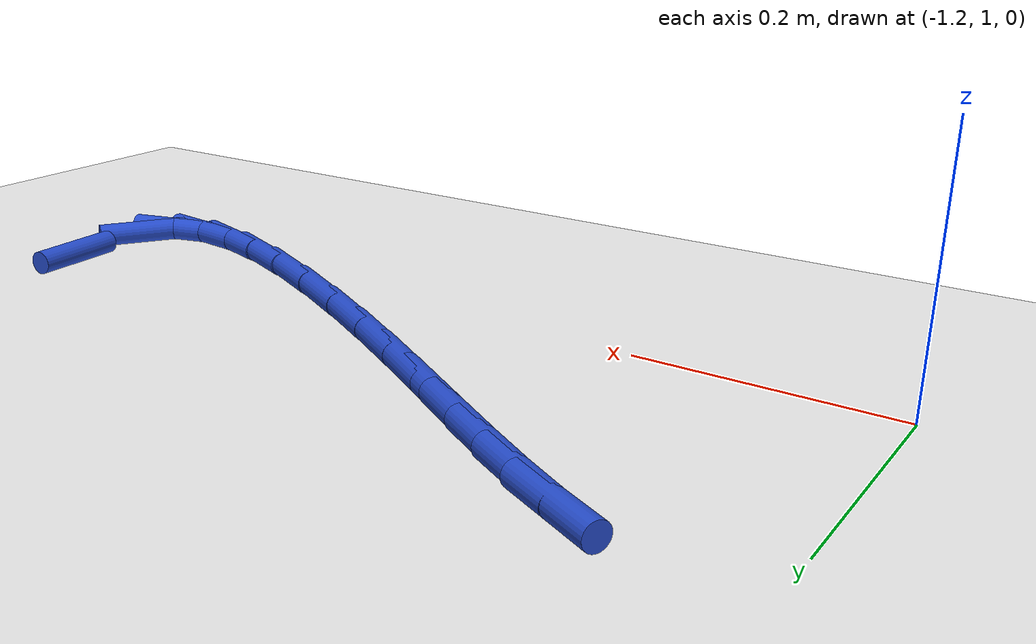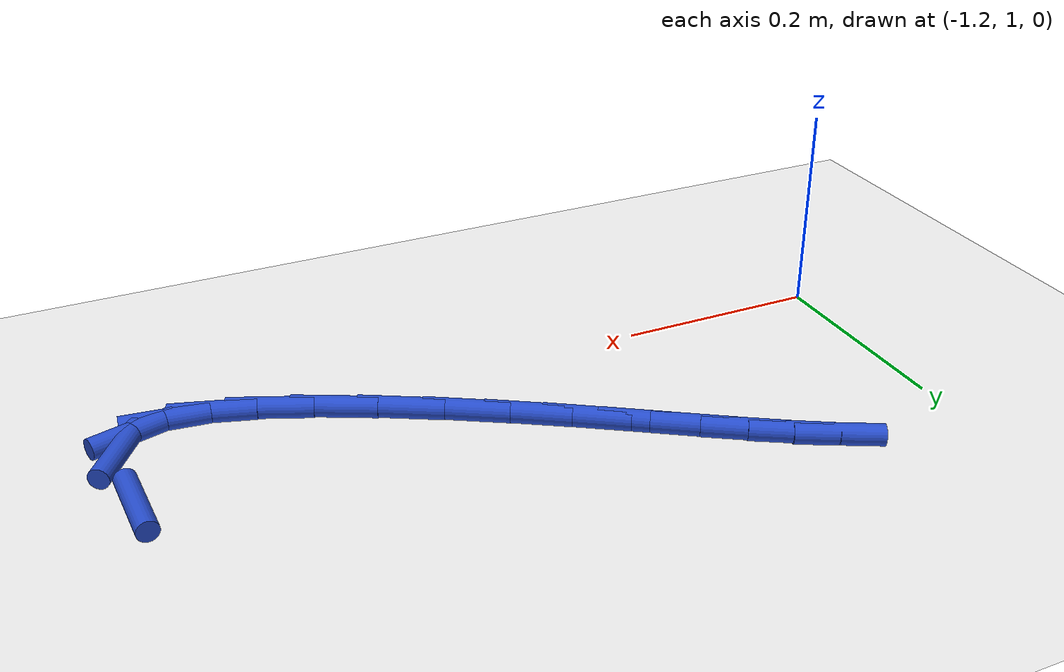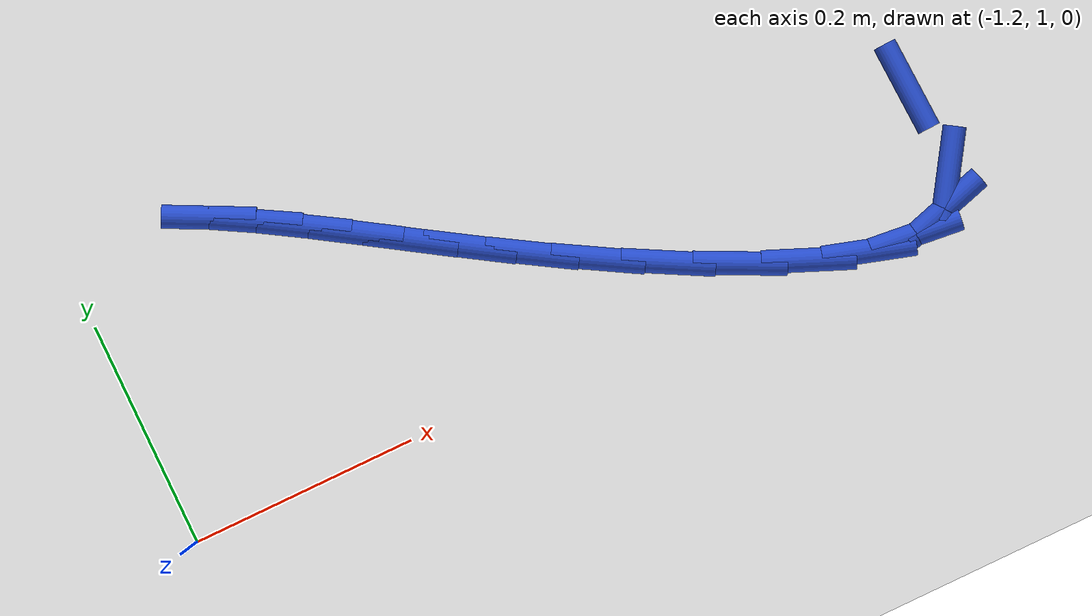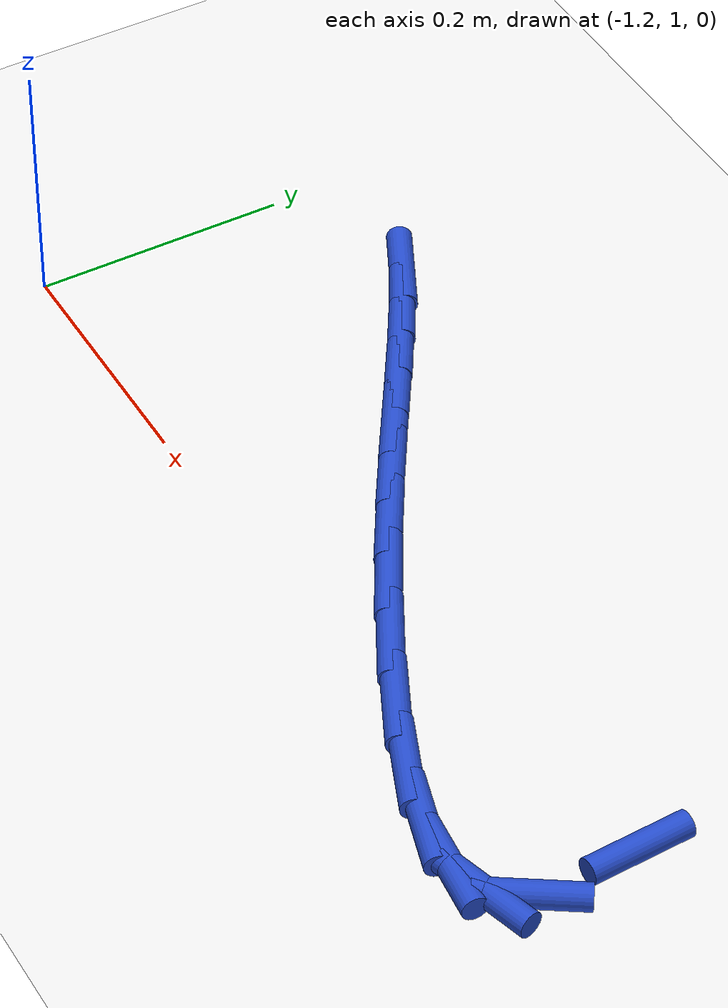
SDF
<sdf version="1.6">
 <world name="default">
  <model name="ground_plane">
   <static>1</static>
   <link name="link">
    <collision name="collision">
     <geometry><plane><normal>0 0 1</normal><size>100 100</size></plane></geometry>
     <surface><friction><ode><mu>100</mu><mu2>50</mu2></ode></friction></surface>
    </collision>
    <visual name="visual">
     <cast_shadows>0</cast_shadows>
     <geometry><plane><normal>0 0 1</normal><size>100 100</size></plane></geometry>
     <material>
      <script><uri>file://media/materials/scripts/gazebo.material</uri><name>Gazebo/WhiteGlow</name></script>
     </material>
    </visual>
   </link>
  </model>
  <model name="line">
   <link name="link_28">
    <pose>-0.495390885817745 1.090029854774531 0.01 0 1.57 -1.525897242596418</pose>
    <collision name="collision">
     <geometry><cylinder><radius>0.01</radius><length>0.08</length></cylinder></geometry>
    </collision>
    <visual name="visual">
     <material>
      <script><name>Gazebo/Blue</name><uri>file://media/materials/scripts/gazebo.material</uri></script>
     </material>
     <geometry><cylinder><radius>0.01</radius><length>0.08</length></cylinder></geometry>
    </visual>
   </link>
   <link name="link_30">
    <pose>-0.4951343439324828 1.0088294250495677 0.01 0 1.57 0.9966554843505282</pose>
    <collision name="collision">
     <geometry><cylinder><radius>0.01</radius><length>0.08</length></cylinder></geometry>
    </collision>
    <visual name="visual">
     <material>
      <script><name>Gazebo/Blue</name><uri>file://media/materials/scripts/gazebo.material</uri></script>
     </material>
     <geometry><cylinder><radius>0.01</radius><length>0.08</length></cylinder></geometry>
    </visual>
   </link>
   <link name="link_31">
    <pose>-0.5115635701526513 0.9834296713163049 0.01 0 1.57 0.2851591304180115</pose>
    <collision name="collision">
     <geometry><cylinder><radius>0.01</radius><length>0.08</length></cylinder></geometry>
    </collision>
    <visual name="visual">
     <material>
      <script><name>Gazebo/Blue</name><uri>file://media/materials/scripts/gazebo.material</uri></script>
     </material>
     <geometry><cylinder><radius>0.01</radius><length>0.08</length></cylinder></geometry>
    </visual>
   </link>
   <link name="link_32">
    <pose>-0.5421954612390985 0.9744499814456288 0.01 0 1.57 -0.10648267011751417</pose>
    <collision name="collision">
     <geometry><cylinder><radius>0.01</radius><length>0.08</length></cylinder></geometry>
    </collision>
    <visual name="visual">
     <material>
      <script><name>Gazebo/Blue</name><uri>file://media/materials/scripts/gazebo.material</uri></script>
     </material>
     <geometry><cylinder><radius>0.01</radius><length>0.08</length></cylinder></geometry>
    </visual>
   </link>
   <link name="link_33">
    <pose>-0.5837086463189772 0.9788871994815329 0.01 0 1.57 -0.2938674265596027</pose>
    <collision name="collision">
     <geometry><cylinder><radius>0.01</radius><length>0.08</length></cylinder></geometry>
    </collision>
    <visual name="visual">
     <material>
      <script><name>Gazebo/Blue</name><uri>file://media/materials/scripts/gazebo.material</uri></script>
     </material>
     <geometry><cylinder><radius>0.01</radius><length>0.08</length></cylinder></geometry>
    </visual>
   </link>
   <link name="link_34">
    <pose>-0.6327817545194403 0.9937381694680107 0.01 0 1.57 -0.3955640258323818</pose>
    <collision name="collision">
     <geometry><cylinder><radius>0.01</radius><length>0.08</length></cylinder></geometry>
    </collision>
    <visual name="visual">
     <material>
      <script><name>Gazebo/Blue</name><uri>file://media/materials/scripts/gazebo.material</uri></script>
     </material>
     <geometry><cylinder><radius>0.01</radius><length>0.08</length></cylinder></geometry>
    </visual>
   </link>
   <link name="link_35">
    <pose>-0.6860934149676401 1.0159997354490558 0.01 0 1.57 -0.45705515209429315</pose>
    <collision name="collision">
     <geometry><cylinder><radius>0.01</radius><length>0.08</length></cylinder></geometry>
    </collision>
    <visual name="visual">
     <material>
      <script><name>Gazebo/Blue</name><uri>file://media/materials/scripts/gazebo.material</uri></script>
     </material>
     <geometry><cylinder><radius>0.01</radius><length>0.08</length></cylinder></geometry>
    </visual>
   </link>
   <link name="link_36">
    <pose>-0.7403222567907295 1.0426687414686615 0.01 0 1.57 -0.49667662920331945</pose>
    <collision name="collision">
     <geometry><cylinder><radius>0.01</radius><length>0.08</length></cylinder></geometry>
    </collision>
    <visual name="visual">
     <material>
      <script><name>Gazebo/Blue</name><uri>file://media/materials/scripts/gazebo.material</uri></script>
     </material>
     <geometry><cylinder><radius>0.01</radius><length>0.08</length></cylinder></geometry>
    </visual>
   </link>
   <link name="link_37">
    <pose>-0.7922377223660614 1.0708066681526835 0.01 0 1.57 -0.5258317885991695</pose>
    <collision name="collision">
     <geometry><cylinder><radius>0.01</radius><length>0.08</length></cylinder></geometry>
    </collision>
    <visual name="visual">
     <material>
      <script><name>Gazebo/Blue</name><uri>file://media/materials/scripts/gazebo.material</uri></script>
     </material>
     <geometry><cylinder><radius>0.01</radius><length>0.08</length></cylinder></geometry>
    </visual>
   </link>
   <link name="link_38">
    <pose>-0.8404547015985104 1.0987884985059921 0.01 0 1.57 -0.5487846616128013</pose>
    <collision name="collision">
     <geometry><cylinder><radius>0.01</radius><length>0.08</length></cylinder></geometry>
    </collision>
    <visual name="visual">
     <material>
      <script><name>Gazebo/Blue</name><uri>file://media/materials/scripts/gazebo.material</uri></script>
     </material>
     <geometry><cylinder><radius>0.01</radius><length>0.08</length></cylinder></geometry>
    </visual>
   </link>
   <link name="link_39">
    <pose>-0.885307724014109 1.1262131737873518 0.01 0 1.57 -0.5642853119966269</pose>
    <collision name="collision">
     <geometry><cylinder><radius>0.01</radius><length>0.08</length></cylinder></geometry>
    </collision>
    <visual name="visual">
     <material>
      <script><name>Gazebo/Blue</name><uri>file://media/materials/scripts/gazebo.material</uri></script>
     </material>
     <geometry><cylinder><radius>0.01</radius><length>0.08</length></cylinder></geometry>
    </visual>
   </link>
   <link name="link_40">
    <pose>-0.9271969314784504 1.152726335019579 0.01 0 1.57 -0.5707360596126567</pose>
    <collision name="collision">
     <geometry><cylinder><radius>0.01</radius><length>0.08</length></cylinder></geometry>
    </collision>
    <visual name="visual">
     <material>
      <script><name>Gazebo/Blue</name><uri>file://media/materials/scripts/gazebo.material</uri></script>
     </material>
     <geometry><cylinder><radius>0.01</radius><length>0.08</length></cylinder></geometry>
    </visual>
   </link>
   <link name="link_41">
    <pose>-0.9665224658571285 1.1779736232254918 0.01 0 1.57 -0.5663174870563656</pose>
    <collision name="collision">
     <geometry><cylinder><radius>0.01</radius><length>0.08</length></cylinder></geometry>
    </collision>
    <visual name="visual">
     <material>
      <script><name>Gazebo/Blue</name><uri>file://media/materials/scripts/gazebo.material</uri></script>
     </material>
     <geometry><cylinder><radius>0.01</radius><length>0.08</length></cylinder></geometry>
    </visual>
   </link>
   <link name="link_42">
    <pose>-1.0036844690157374 1.201600679427907 0.01 0 1.57 -0.5489602338159285</pose>
    <collision name="collision">
     <geometry><cylinder><radius>0.01</radius><length>0.08</length></cylinder></geometry>
    </collision>
    <visual name="visual">
     <material>
      <script><name>Gazebo/Blue</name><uri>file://media/materials/scripts/gazebo.material</uri></script>
     </material>
     <geometry><cylinder><radius>0.01</radius><length>0.08</length></cylinder></geometry>
    </visual>
   </link>
   <link name="link_43">
    <pose>-1.03908308281987 1.2232531446496415 0.01 0 1.57 -0.5163672220605233</pose>
    <collision name="collision">
     <geometry><cylinder><radius>0.01</radius><length>0.08</length></cylinder></geometry>
    </collision>
    <visual name="visual">
     <material>
      <script><name>Gazebo/Blue</name><uri>file://media/materials/scripts/gazebo.material</uri></script>
     </material>
     <geometry><cylinder><radius>0.01</radius><length>0.08</length></cylinder></geometry>
    </visual>
   </link>
   <link name="link_44">
    <pose>-1.0731184491351213 1.242576659913513 0.01 0 1.57 -0.46616198010268084</pose>
    <collision name="collision">
     <geometry><cylinder><radius>0.01</radius><length>0.08</length></cylinder></geometry>
    </collision>
    <visual name="visual">
     <material>
      <script><name>Gazebo/Blue</name><uri>file://media/materials/scripts/gazebo.material</uri></script>
     </material>
     <geometry><cylinder><radius>0.01</radius><length>0.08</length></cylinder></geometry>
    </visual>
   </link>
  </model>
 </world>
</sdf>
